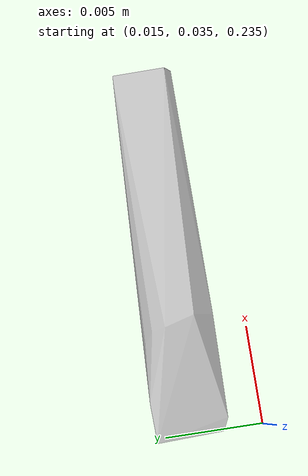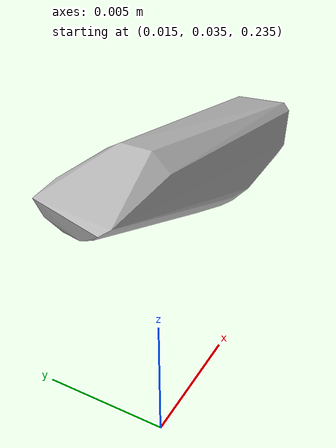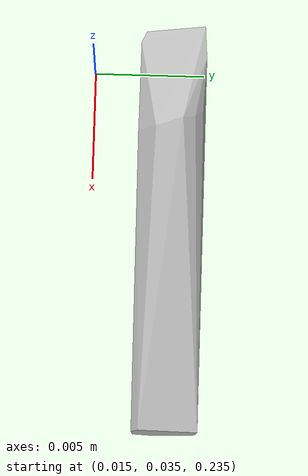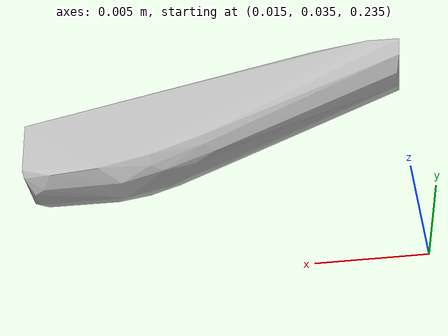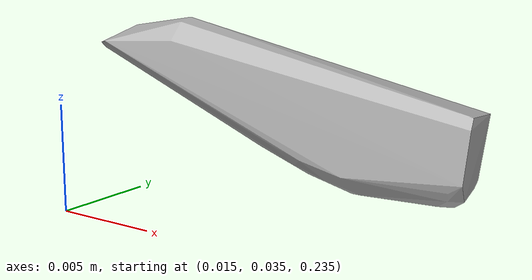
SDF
<?xml version="1.0"?>
<sdf version="1.7">
  <model name="vascular_partexport027">
    <link name="vascular_partexport027_body">
      <visual name="vascular_partexport027_visual">
        <geometry>
          <mesh>
            <uri>vascular_partexport027.obj</uri>
          </mesh>
        </geometry>
      </visual>
      <collision name="vascular_partexport027_collision">
        <geometry>
          <mesh>
            <uri>vascular_partexport027.obj</uri>
          </mesh>
        </geometry>
      </collision>
    </link>
    <frame name="vascular_partexport027_center">
      <pose relative_to="vascular_partexport027_body">0 0 0 0 0 0</pose>
    </frame>
  </model>
</sdf>
